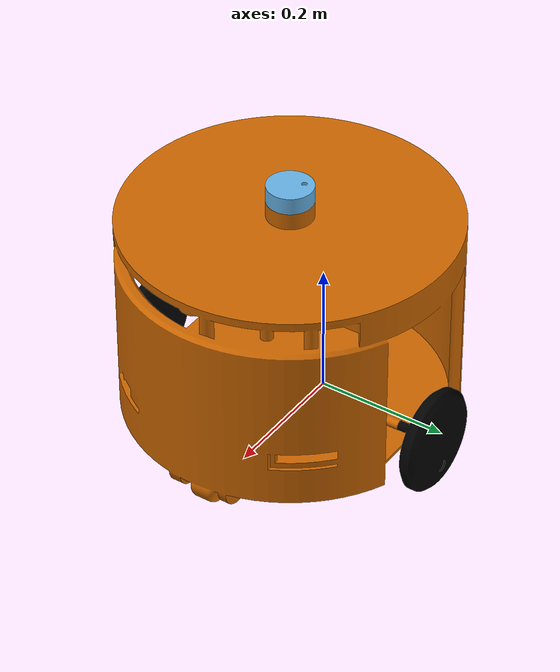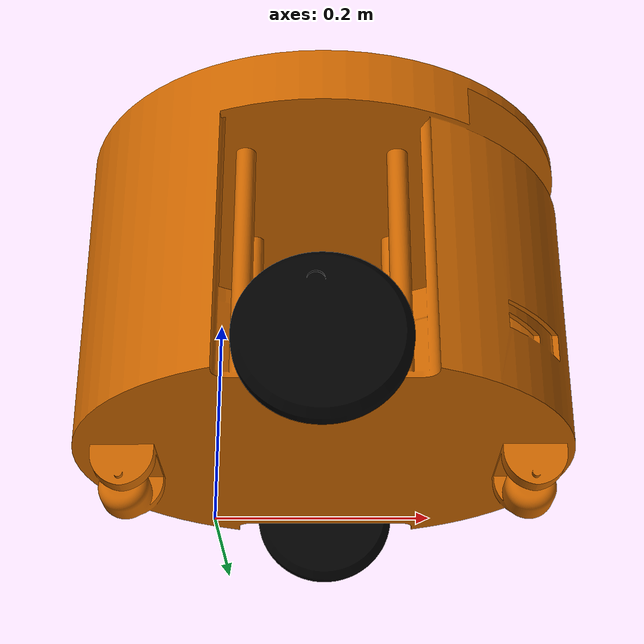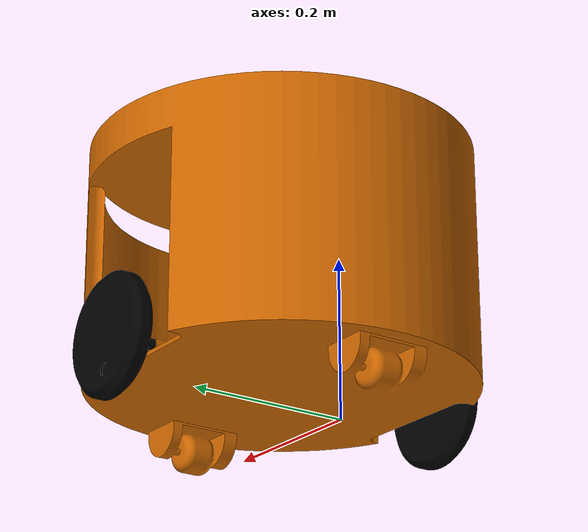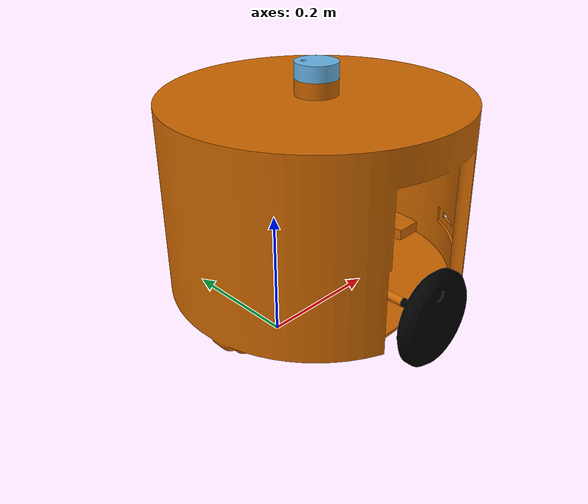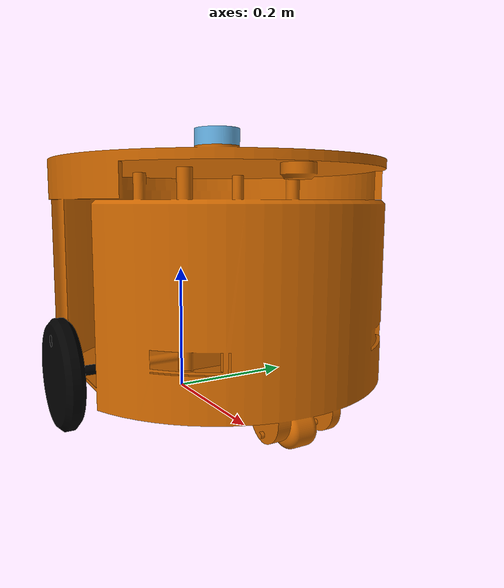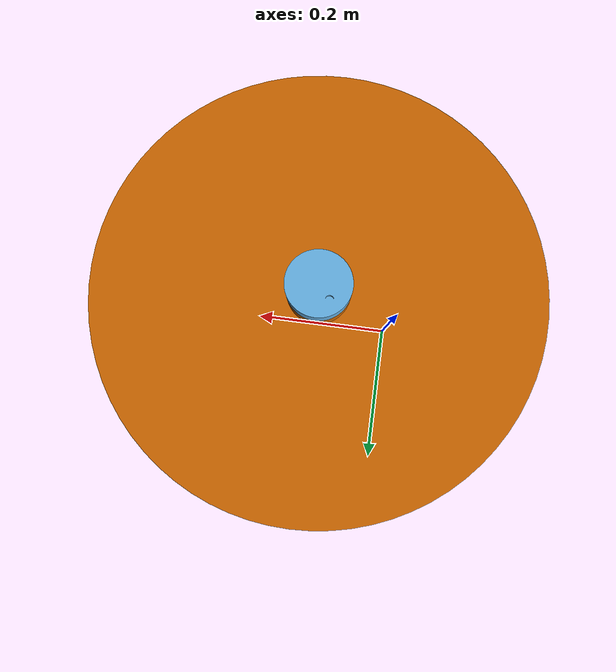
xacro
<?xml version="1.0" ?>
<robot name="my_bot" xmlns:xacro="http://www.ros.org/wiki/xacro">

<!-- >>>>>>>>>>>>>>>>>>>>>>>>>>>  COLOUR  <<<<<<<<<<<<<<<<<<<<<<<<<<<<< -->

<material name="Dark Orange">
    <color rgba="0.8 0.4 0.0 1"/>
</material>

<material name="Black">
    <color rgba="0 0 0 1"/>
</material>

<material name="Soft Gold">
    <color rgba="0.85 0.65 0.13 1"/>
</material>

<material name="Blue">
    <color rgba="0.4 0.7 0.9 1"/>
</material>

<!-- >>>>>>>>>>>>>>>>>>>>>>>>>>>  LINK  <<<<<<<<<<<<<<<<<<<<<<<<<<<<< -->

<link name="base_footprint"/>

<link name="base_link">
  <inertial>
    <origin xyz="0.0756055 0.0105518 0.12327" rpy="0 0 0"/>
    <mass value="22.0632"/>
    <inertia ixx="0.640947" ixy="0.00023198" ixz="-0.00452525" iyy="0.831169" iyz="-0.000895426" izz="0.862058"/>
  </inertial>
  <visual>
    <origin xyz="0.101903 0.0114713 -0.038956" rpy="7.20565e-09 1.79713e-08 -5.12515e-08"/>
    <geometry>
      <mesh filename="file://$(find my_bot)/models/meshes/base_plate.stl"/>
    </geometry>
    <material name="Dark Orange"/>
  </visual>
  <collision>
    <origin xyz="0.101903 0.0114713 -0.038956" rpy="7.20565e-09 1.79713e-08 -5.12515e-08"/>
    <geometry>
      <mesh filename="file://$(find my_bot)/models/meshes/base_plate.stl"/>
    </geometry>
  </collision>
</link>

<link name="left_wheel">
  <inertial>
    <origin xyz="6.16316e-06 5.45884e-05 -0.0540036" rpy="0 0 0"/>
    <mass value="0.467537"/>
    <inertia ixx="0.000648297" ixy="1.31639e-07" ixz="3.37033e-08" iyy="0.000649448" iyz="2.98517e-07" izz="0.00123559"/>
  </inertial>
  <visual>
    <origin xyz="0.365932 -0.19763 -0.067" rpy="-8.27181e-25 9.95924e-24 6.81701e-25"/>
    <geometry>
      <mesh filename="file://$(find my_bot)/models/meshes/left_wheel.stl"/>
    </geometry>
    <material name="Black"/>
  </visual>
  <collision>
    <origin xyz="0.365932 -0.19763 -0.067" rpy="-8.27181e-25 9.95924e-24 6.81701e-25"/>
    <geometry>
      <mesh filename="file://$(find my_bot)/models/meshes/left_wheel.stl"/>
    </geometry>
  </collision>
</link>

<link name="right_wheel">
  <inertial>
    <origin xyz="6.16316e-06 5.45884e-05 -0.0540036" rpy="0 0 0"/>
    <mass value="0.467537"/>
    <inertia ixx="0.000648297" ixy="1.31639e-07" ixz="3.37033e-08" iyy="0.000649448" iyz="2.98517e-07" izz="0.00123559"/>
  </inertial>
  <visual>
    <origin xyz="0.365932 -0.0456296 -0.067" rpy="0 -4.56045e-24 -8.6624e-26"/>
    <geometry>
      <mesh filename="file://$(find my_bot)/models/meshes/right_wheel.stl"/>
    </geometry>
    <material name="Black"/>
  </visual>
  <collision>
    <origin xyz="0.365932 -0.0456296 -0.067" rpy="0 -4.56045e-24 -8.6624e-26"/>
    <geometry>
      <mesh filename="file://$(find my_bot)/models/meshes/right_wheel.stl"/>
    </geometry>
  </collision>
</link>

<link name="lidar">
  <inertial>
    <origin xyz="8.38248e-05 0.000100181 -0.0159059" rpy="0 0 0"/>
    <mass value="0.0390588"/>
    <inertia ixx="1.75596e-05" ixy="4.82447e-08" ixz="2.24081e-08" iyy="1.75769e-05" iyz="2.67805e-08" izz="3.06455e-05"/>
  </inertial>
  <visual>
    <origin xyz="0 1.73472e-18 0.33" rpy="-3.14159 6.81701e-25 -3.9508e-33"/>
    <geometry>
      <mesh filename="file://$(find my_bot)/models/meshes/lidar.stl"/>
    </geometry>
    <material name="Blue"/>
  </visual>
  <collision>
    <origin xyz="0 1.73472e-18 0.33" rpy="-3.14159 6.81701e-25 -3.9508e-33"/>
    <geometry>
      <mesh filename="file://$(find my_bot)/models/meshes/lidar.stl"/>
    </geometry>
  </collision>
</link>

<!-- >>>>>>>>>>>>>>>>>>>>>>>>>>>  JOINTS  <<<<<<<<<<<<<<<<<<<<<<<<<<<<< -->

<joint name="left" type="continuous">
  <origin xyz="0.101903 0.193571 -0.017918" rpy="1.5708 1.79713e-08 -5.12515e-08"/>
  <parent link="base_link"/>
  <child link="left_wheel"/>
  <axis xyz="0 0 -1"/>
</joint>

<joint name="right" type="continuous">
  <origin xyz="0.101903 -0.170329 -0.017918" rpy="-1.5708 1.52913e-08 -5.12515e-08"/>
  <parent link="base_link"/>
  <child link="right_wheel"/>
  <axis xyz="0 0 1"/>
</joint>

<joint name="lidar_joint" type="fixed">
  <origin xyz="0.101903 0.0114713 0.291044" rpy="-3.14159 1.79713e-08 3.83496e-17"/>
  <parent link="base_link"/>
  <child link="lidar"/>
  <axis xyz="0 0 1"/>
  <limit effort="10" velocity="10" lower="-3.141592653589793" upper="3.141592653589793"/>
</joint>

<joint name="base_footprint_joint" type="fixed">
  <origin xyz="0 0 0.1" rpy="0 0 0"/>
  <parent link="base_footprint"/>
  <child link="base_link"/>
</joint>

<!-- >>>>>>>>>>>>>>>>>>>>>>>>>>>  FRICTION  <<<<<<<<<<<<<<<<<<<<<<<<<<<<< -->

<!-- >>>>>>>>>>>>>>>>>>>>>>>>>>>  PLUGIN  <<<<<<<<<<<<<<<<<<<<<<<<<<<<< -->

<gazebo>

  <plugin filename="libignition-gazebo-joint-state-publisher-system.so" name="ignition::gazebo::systems::JointStatePublisher">
    <topic>/joint_states</topic>
  </plugin>

  <plugin
    filename="libignition-gazebo-sensors-system.so"
    name="ignition::gazebo::systems::Sensors">
    <render_engine>ogre2</render_engine>
  </plugin>

  <plugin
      filename="libignition-gazebo-diff-drive-system.so"
      name="ignition::gazebo::systems::DiffDrive">
      <left_joint>left</left_joint>
      <right_joint>right</right_joint>
      <wheel_separation>0.4389</wheel_separation>
      <wheel_diameter>0.15</wheel_diameter>
      <odom_topic>odom</odom_topic>
      <odom_publish_frequency>1</odom_publish_frequency>
      <topic>cmd_vel</topic>
  </plugin>

  <plugin filename="ignition-gazebo-odometry-publisher-system" name="ignition::gazebo::systems::OdometryPublisher">
    <odom_frame>odom</odom_frame>
    <robot_base_frame>base_footprint</robot_base_frame>
    <topic>/odom</topic>
    <left_joint>left</left_joint>
    <right_joint>right</right_joint>
    <wheel_separation>0.473</wheel_separation>
    <wheel_radius>0.075</wheel_radius>
    <publish_tf>true</publish_tf>
    <odom_publish_frequency>60</odom_publish_frequency>
    <tf_topic>/tf</tf_topic>
    <publish_rate>30</publish_rate>
  </plugin>

  <plugin filename="libignition-gazebo-imu-system.so"
          name="ignition::gazebo::systems::Imu">
  </plugin>

</gazebo>

<!-- >>>>>>>>>>>>>>>>>>>>>>>>>>>  SENSOR  <<<<<<<<<<<<<<<<<<<<<<<<<<<<< -->

<!-- Camera sensor -->
<gazebo reference="lidar">
<sensor name="depth_camera" type="rgbd_camera">
        <always_on>true</always_on>
        <visualize>true</visualize>
        <update_rate>5.0</update_rate>
        <topic>depth_camera</topic>
        <gz_frame_id>camera</gz_frame_id>
        <camera>
          <horizontal_fov>1.047198</horizontal_fov>
          <image>
            <width>640</width>
            <height>480</height>
          </image>
          <clip>
            <near>0.05</near>
            <far>3</far>
          </clip>
        </camera>
        <baseline>0.2</baseline>
        <pointCloudCutoff>0.5</pointCloudCutoff>
        <pointCloudCutoffMax>3.0</pointCloudCutoffMax>
        <distortionK1>0</distortionK1>
        <distortionK2>0</distortionK2>
        <distortionK3>0</distortionK3>
        <distortionT1>0</distortionT1>
        <distortionT2>0</distortionT2>
        <CxPrime>0</CxPrime>
        <Cx>0</Cx>
        <Cy>0</Cy>
        <focalLength>0</focalLength>
        <hackBaseline>0</hackBaseline>
      </sensor>
</gazebo>

<!-- 2D Lidar sensor -->
<gazebo reference="lidar">
  <sensor name="gpu_lidar" type="gpu_lidar">
  <pose relative_to='lidar'>0 0 0 0 0 0</pose>
  <ignition_frame_id>lidar</ignition_frame_id>
    <topic>/scan</topic>
    <update_rate>30</update_rate>
    <ray>
      <scan>
        <horizontal>
          <samples>360</samples>
          <resolution>1</resolution>
          <min_angle>-3.14</min_angle>
          <max_angle>3.14</max_angle>
        </horizontal>
      </scan>
      <range>
        <min>0.2</min>
        <max>10.0</max>
        <resolution>0.01</resolution>
      </range>
    </ray>
    <always_on>1</always_on>
    <visualize>true</visualize>
  </sensor>
</gazebo>

<!-- IMU sensor -->
<gazebo reference="base_link">
  <sensor name="imu_sensor" type="imu">
      <always_on>true</always_on>
      <ignition_frame_id>base_link</ignition_frame_id>
      <frame_id>base_link</frame_id>
      <update_rate>20</update_rate>
      <visualize>true</visualize>
      <topic>imu</topic>
  </sensor>
</gazebo>

<!-- 3D lidar sensor -->
<gazebo reference="lidar">
      <sensor name="lidar_sensor" type="gpu_ray">
        <pose>0 0 0.0 0 0 0</pose>
        <update_rate>20</update_rate>
        <visualize>true</visualize>
        <ignition_frame_id>lidar</ignition_frame_id>
        <topic>/lidar</topic>
        <ray>
          <scan>
            <horizontal>
              <samples>360</samples>
              <min_angle>-3.14</min_angle>
              <max_angle>3.14</max_angle>
            </horizontal>
            <vertical>
              <samples>16</samples>
              <min_angle>-0.4618</min_angle> <!-- -15 deg -->
              <max_angle>0.0900</max_angle>  <!-- +15 deg -->
            </vertical>
          </scan>
          <range>
            <min>0.2</min>
            <max>30.0</max>
            <resolution>0.01</resolution>
          </range>
        </ray>
        <always_on>1</always_on>
        <visualize>true</visualize>

      </sensor>
</gazebo>

</robot>
